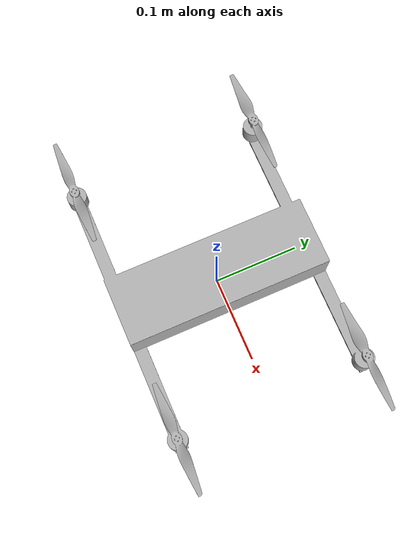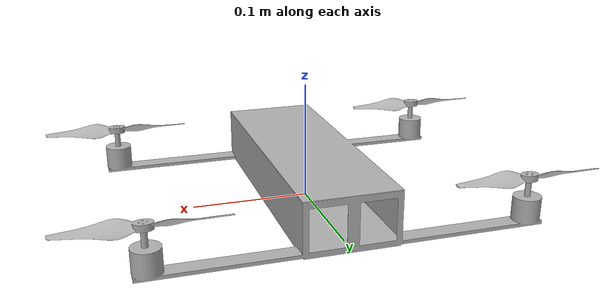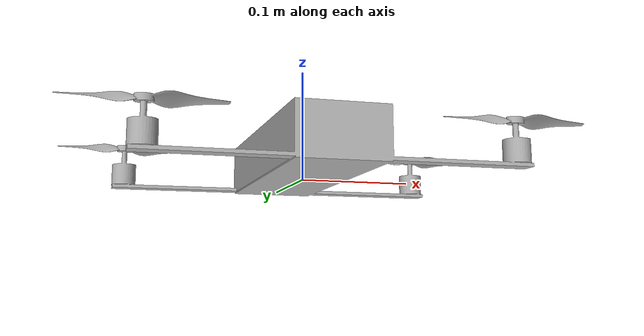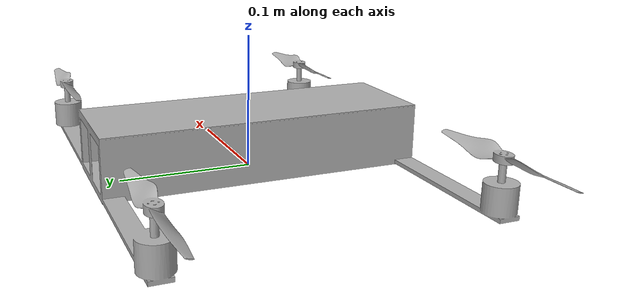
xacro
<?xml version="1.0" ?>
<robot name="droneis" xmlns:xacro="http://www.ros.org/wiki/xacro">

<xacro:include filename="$(find droneis_description)/urdf/materials.xacro" />
<xacro:include filename="$(find droneis_description)/urdf/droneis.ros2control" />
<xacro:include filename="$(find droneis_description)/urdf/droneis.gazebo" />
<link name="base_link">
  <inertial>
    <origin xyz="-6.269262586567522e-05 -0.00013116503667920555 0.01061473528720346" rpy="0 0 0"/>
    <mass value="0.22071483189998609"/>
    <inertia ixx="0.001748" iyy="0.001627" izz="0.003279" ixy="-2e-06" iyz="0.0" ixz="-0.0"/>
  </inertial>
  <visual>
    <origin xyz="0 0 0" rpy="0 0 0"/>
    <geometry>
      <mesh filename="file://$(find droneis_description)/meshes/base_link.stl" scale="0.001 0.001 0.001"/>
    </geometry>
    <material name="silver"/>
  </visual>
  <collision>
    <origin xyz="0 0 0" rpy="0 0 0"/>
    <geometry>
      <mesh filename="file://$(find droneis_description)/meshes/base_link.stl" scale="0.001 0.001 0.001"/>
    </geometry>
  </collision>
</link>

<link name="prof_left_1">
  <inertial>
    <origin xyz="8.03361013851367e-06 6.851232626392534e-06 0.0021931480551776253" rpy="0 0 0"/>
    <mass value="0.016440807068293553"/>
    <inertia ixx="0.000001" iyy="0.000001" izz="0.000001" ixy="0.0" iyz="-0.0" ixz="-0.0"/>
  </inertial>
  <visual>
    <origin xyz="-0.15242 -0.1125 -0.038" rpy="0 0 0"/>
    <geometry>
      <mesh filename="file://$(find droneis_description)/meshes/prof_left_1.stl" scale="0.001 0.001 0.001"/>
    </geometry>
    <material name="silver"/>
  </visual>
  <collision>
    <origin xyz="-0.15242 -0.1125 -0.038" rpy="0 0 0"/>
    <geometry>
      <mesh filename="file://$(find droneis_description)/meshes/prof_left_1.stl" scale="0.001 0.001 0.001"/>
    </geometry>
  </collision>
</link>

<link name="prof_right_1">
  <inertial>
    <origin xyz="1.9469921086118225e-05 8.182305304817172e-05 0.0021931242379461396" rpy="0 0 0"/>
    <mass value="0.016439531064918553"/>
    <inertia ixx="0.000001" iyy="0.000001" izz="0.000001" ixy="0.0" iyz="0.0" ixz="-0.0"/>
  </inertial>
  <visual>
    <origin xyz="-0.151692 0.112325 -0.038" rpy="0 0 0"/>
    <geometry>
      <mesh filename="file://$(find droneis_description)/meshes/prof_right_1.stl" scale="0.001 0.001 0.001"/>
    </geometry>
    <material name="silver"/>
  </visual>
  <collision>
    <origin xyz="-0.151692 0.112325 -0.038" rpy="0 0 0"/>
    <geometry>
      <mesh filename="file://$(find droneis_description)/meshes/prof_right_1.stl" scale="0.001 0.001 0.001"/>
    </geometry>
  </collision>
</link>

<link name="prob_right_1">
  <inertial>
    <origin xyz="5.156747642126591e-05 3.58159950117759e-05 0.002193139880176484" rpy="0 0 0"/>
    <mass value="0.016440369071928952"/>
    <inertia ixx="0.000001" iyy="0.000001" izz="0.000001" ixy="0.0" iyz="-0.0" ixz="-0.0"/>
  </inertial>
  <visual>
    <origin xyz="0.152203 0.112325 -0.038" rpy="0 0 0"/>
    <geometry>
      <mesh filename="file://$(find droneis_description)/meshes/prob_right_1.stl" scale="0.001 0.001 0.001"/>
    </geometry>
    <material name="silver"/>
  </visual>
  <collision>
    <origin xyz="0.152203 0.112325 -0.038" rpy="0 0 0"/>
    <geometry>
      <mesh filename="file://$(find droneis_description)/meshes/prob_right_1.stl" scale="0.001 0.001 0.001"/>
    </geometry>
  </collision>
</link>

<link name="prob_left_1">
  <inertial>
    <origin xyz="4.270158963026738e-05 -4.497679253090414e-06 0.0021931530578892383" rpy="0 0 0"/>
    <mass value="0.016441075112731848"/>
    <inertia ixx="0.000001" iyy="0.000001" izz="0.000001" ixy="0.0" iyz="-0.0" ixz="-0.0"/>
  </inertial>
  <visual>
    <origin xyz="0.152039 -0.1125 -0.038" rpy="0 0 0"/>
    <geometry>
      <mesh filename="file://$(find droneis_description)/meshes/prob_left_1.stl" scale="0.001 0.001 0.001"/>
    </geometry>
    <material name="silver"/>
  </visual>
  <collision>
    <origin xyz="0.152039 -0.1125 -0.038" rpy="0 0 0"/>
    <geometry>
      <mesh filename="file://$(find droneis_description)/meshes/prob_left_1.stl" scale="0.001 0.001 0.001"/>
    </geometry>
  </collision>
</link>

<joint name="Revolute 1" type="continuous">
  <origin xyz="0.15242 0.1125 0.038" rpy="0 0 0"/>
  <parent link="base_link"/>
  <child link="prof_left_1"/>
  <axis xyz="0.0 0.0 1.0"/>
</joint>

<joint name="Revolute 2" type="continuous">
  <origin xyz="0.151692 -0.112325 0.038" rpy="0 0 0"/>
  <parent link="base_link"/>
  <child link="prof_right_1"/>
  <axis xyz="0.0 0.0 1.0"/>
</joint>

<joint name="Revolute 3" type="continuous">
  <origin xyz="-0.152203 -0.112325 0.038" rpy="0 0 0"/>
  <parent link="base_link"/>
  <child link="prob_right_1"/>
  <axis xyz="0.0 0.0 1.0"/>
</joint>

<joint name="Revolute 4" type="continuous">
  <origin xyz="-0.152039 0.1125 0.038" rpy="0 0 0"/>
  <parent link="base_link"/>
  <child link="prob_left_1"/>
  <axis xyz="0.0 0.0 1.0"/>
</joint>

</robot>

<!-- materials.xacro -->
<robot name="droneis" xmlns:xacro="http://www.ros.org/wiki/xacro" >

<material name="silver">
  <color rgba="0.700 0.700 0.700 1.000"/>
</material>

</robot>

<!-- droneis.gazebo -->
<robot name="droneis" xmlns:xacro="http://www.ros.org/wiki/xacro" >

<xacro:property name="body_color" value="Gazebo/Silver" />

<gazebo reference="base_link">
  <material>${body_color}</material>
  <mu1>0.2</mu1>
  <mu2>0.2</mu2>
  <self_collide>true</self_collide>
  <gravity>true</gravity>
</gazebo>

<gazebo reference="prof_left_1">
  <material>${body_color}</material>
  <mu1>0.2</mu1>
  <mu2>0.2</mu2>
  <self_collide>true</self_collide>
</gazebo>

<gazebo reference="prof_right_1">
  <material>${body_color}</material>
  <mu1>0.2</mu1>
  <mu2>0.2</mu2>
  <self_collide>true</self_collide>
</gazebo>

<gazebo reference="prob_right_1">
  <material>${body_color}</material>
  <mu1>0.2</mu1>
  <mu2>0.2</mu2>
  <self_collide>true</self_collide>
</gazebo>

<gazebo reference="prob_left_1">
  <material>${body_color}</material>
  <mu1>0.2</mu1>
  <mu2>0.2</mu2>
  <self_collide>true</self_collide>
</gazebo>

</robot>
